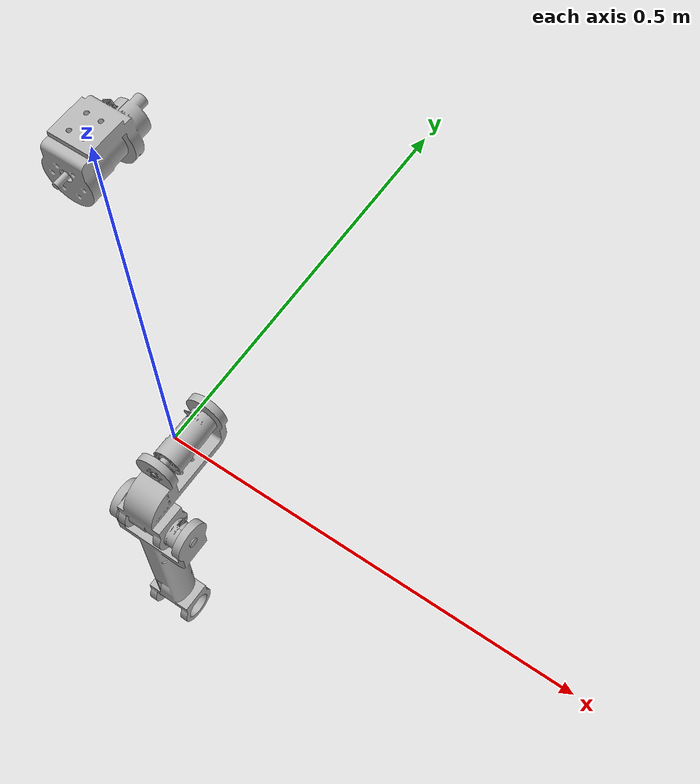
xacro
<?xml version="1.0" ?>
<robot name="test" xmlns:xacro="http://www.ros.org/wiki/xacro">

<xacro:include filename="$(find test_description)/urdf/materials.xacro" />
<xacro:include filename="$(find test_description)/urdf/test.trans" />
<xacro:include filename="$(find test_description)/urdf/test.gazebo" />
<link name="base_link">
  <inertial>
    <origin rpy="0 0 0" xyz="-2.7174602321866267e-05 0.006053798965408933 -0.028185037843435335"/>
    <mass value="0.512530898807761"/>
    <inertia ixx="0.000232" ixy="0.0" ixz="0.0" iyy="0.000107" iyz="6e-06" izz="0.000214"/>
  </inertial>
  <visual>
    <origin rpy="0 0 0" xyz="0 0 0"/>
    <geometry>
      <mesh filename="package://test_description/meshes/base_link.stl" scale="0.001 0.001 0.001"/>
    </geometry>
    <material name="silver_default"/>
  </visual>
  <collision>
    <origin rpy="0 0 0" xyz="0 0 0"/>
    <geometry>
      <mesh filename="package://test_description/meshes/base_link.stl" scale="0.001 0.001 0.001"/>
    </geometry>
  </collision>
</link>

<link name="link1_1">
  <inertial>
    <origin rpy="0 0 0" xyz="0.004801846519684241 -0.02050265302497735 -0.06715836046905144"/>
    <mass value="0.6482857223985624"/>
    <inertia ixx="0.000981" ixy="3.2e-05" ixz="4e-05" iyy="0.00061" iyz="-0.000293" izz="0.000757"/>
  </inertial>
  <visual>
    <origin rpy="0 0 0" xyz="0.0 0.03 0.023"/>
    <geometry>
      <mesh filename="package://test_description/meshes/link1_1.stl" scale="0.001 0.001 0.001"/>
    </geometry>
    <material name="silver_default"/>
  </visual>
  <collision>
    <origin rpy="0 0 0" xyz="0.0 0.03 0.023"/>
    <geometry>
      <mesh filename="package://test_description/meshes/link1_1.stl" scale="0.001 0.001 0.001"/>
    </geometry>
  </collision>
</link>

<link name="link2_1">
  <inertial>
    <origin rpy="0 0 0" xyz="0.029389205621800668 0.018111082366764245 -0.014317738945031966"/>
    <mass value="1.1570361127148925"/>
    <inertia ixx="0.024873" ixy="-1.8e-05" ixz="-0.000327" iyy="0.023741" iyz="-0.004752" izz="0.001913"/>
  </inertial>
  <visual>
    <origin rpy="0 0 0" xyz="0.03 0.0521 0.169"/>
    <geometry>
      <mesh filename="package://test_description/meshes/link2_1.stl" scale="0.001 0.001 0.001"/>
    </geometry>
    <material name="silver_default"/>
  </visual>
  <collision>
    <origin rpy="0 0 0" xyz="0.03 0.0521 0.169"/>
    <geometry>
      <mesh filename="package://test_description/meshes/link2_1.stl" scale="0.001 0.001 0.001"/>
    </geometry>
  </collision>
</link>

<joint name="joint1" type="continuous">
  <origin rpy="0 0 0" xyz="0.0 -0.03 -0.023"/>
  <parent link="base_link"/>
  <child link="link1_1"/>
  <axis xyz="0.0 1.0 0.0"/>
</joint>

<joint name="joint2" type="continuous">
  <origin rpy="0 0 0" xyz="-0.03 -0.0221 -0.146"/>
  <parent link="link1_1"/>
  <child link="link2_1"/>
  <axis xyz="1.0 0.0 0.0"/>
</joint>

</robot>

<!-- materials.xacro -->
<robot name="test" xmlns:xacro="http://www.ros.org/wiki/xacro" >

<material name="silver_default">
  <color rgba="0.700 0.700 0.700 1.000"/>
</material>

</robot>

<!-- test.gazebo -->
<robot name="test" xmlns:xacro="http://www.ros.org/wiki/xacro" >

<xacro:property name="body_color" value="Gazebo/Silver" />

<gazebo>
  <plugin filename="libgazebo_ros_control.so" name="control"/>
</gazebo>
<gazebo reference="base_link">
  <material>${body_color}</material>
  <mu1>0.2</mu1>
  <mu2>0.2</mu2>
  <selfCollide>true</selfCollide>
  <gravity>true</gravity>
</gazebo>

<gazebo reference="link1_1">
  <material>${body_color}</material>
  <mu1>0.2</mu1>
  <mu2>0.2</mu2>
  <selfCollide>true</selfCollide>
</gazebo>

</robot>
